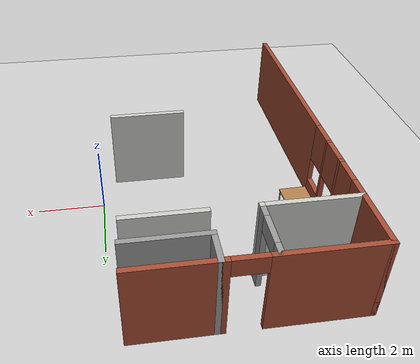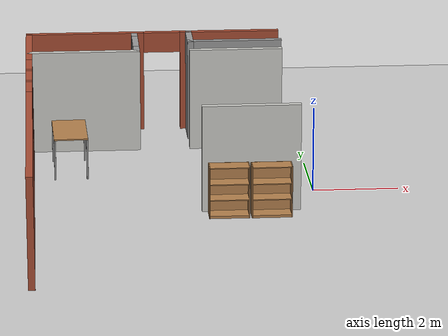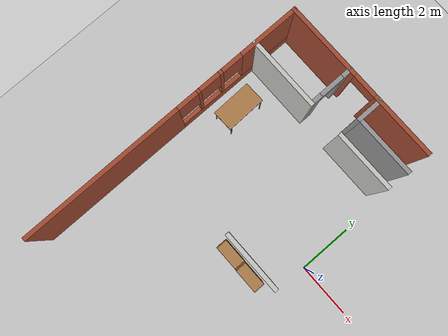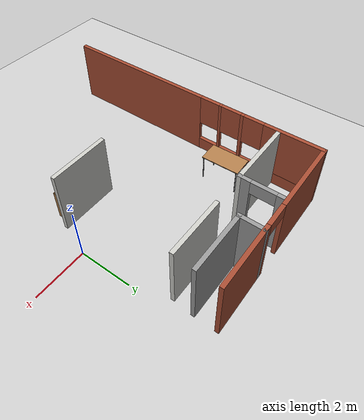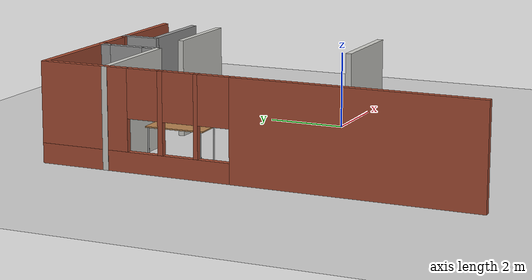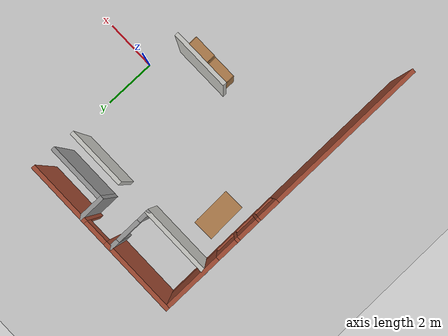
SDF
<sdf version="1.6">
 <world name="default">
  <model name="ground_plane">
   <static>1</static>
   <link name="link">
    <collision name="collision">
     <geometry><plane><normal>0 0 1</normal><size>100 100</size></plane></geometry>
     <surface><friction><ode><mu>100</mu><mu2>50</mu2></ode></friction></surface>
    </collision>
    <visual name="visual">
     <cast_shadows>0</cast_shadows>
     <geometry><plane><normal>0 0 1</normal><size>100 100</size></plane></geometry>
     <material>
      <script><uri>file://media/materials/scripts/gazebo.material</uri><name>Gazebo/Grey</name></script>
     </material>
    </visual>
   </link>
  </model>
  <model name="bookshelf">
   <static>1</static>
   <link name="link">
    <inertial><mass>1</mass></inertial>
    <collision name="back">
     <pose>0 0.005 0.6 0 -0 0</pose>
     <geometry><box><size>0.9 0.01 1.2</size></box></geometry>
    </collision>
    <visual name="visual1">
     <pose>0 0.005 0.6 0 -0 0</pose>
     <geometry><box><size>0.9 0.01 1.2</size></box></geometry>
     <material>
      <script><uri>file://media/materials/scripts/gazebo.material</uri><name>Gazebo/Wood</name></script>
     </material>
    </visual>
    <collision name="left_side">
     <pose>0.45 -0.195 0.6 0 -0 0</pose>
     <geometry><box><size>0.02 0.4 1.2</size></box></geometry>
    </collision>
    <visual name="visual2">
     <pose>0.45 -0.195 0.6 0 -0 0</pose>
     <geometry><box><size>0.02 0.4 1.2</size></box></geometry>
     <material>
      <script><uri>file://media/materials/scripts/gazebo.material</uri><name>Gazebo/Wood</name></script>
     </material>
    </visual>
    <collision name="right_side">
     <pose>-0.45 -0.195 0.6 0 -0 0</pose>
     <geometry><box><size>0.02 0.4 1.2</size></box></geometry>
    </collision>
    <visual name="visual3">
     <pose>-0.45 -0.195 0.6 0 -0 0</pose>
     <geometry><box><size>0.02 0.4 1.2</size></box></geometry>
     <material>
      <script><uri>file://media/materials/scripts/gazebo.material</uri><name>Gazebo/Wood</name></script>
     </material>
    </visual>
    <collision name="bottom">
     <pose>0 -0.195 0.03 0 -0 0</pose>
     <geometry><box><size>0.88 0.4 0.06</size></box></geometry>
    </collision>
    <visual name="visual4">
     <pose>0 -0.195 0.03 0 -0 0</pose>
     <geometry><box><size>0.88 0.4 0.06</size></box></geometry>
     <material>
      <script><uri>file://media/materials/scripts/gazebo.material</uri><name>Gazebo/Wood</name></script>
     </material>
    </visual>
    <collision name="top">
     <pose>0 -0.195 1.19 0 -0 0</pose>
     <geometry><box><size>0.88 0.4 0.02</size></box></geometry>
    </collision>
    <visual name="visual5">
     <pose>0 -0.195 1.19 0 -0 0</pose>
     <geometry><box><size>0.88 0.4 0.02</size></box></geometry>
     <material>
      <script><uri>file://media/materials/scripts/gazebo.material</uri><name>Gazebo/Wood</name></script>
     </material>
    </visual>
    <collision name="low_shelf">
     <pose>0 -0.195 0.43 0 -0 0</pose>
     <geometry><box><size>0.88 0.4 0.02</size></box></geometry>
    </collision>
    <visual name="visual6">
     <pose>0 -0.195 0.43 0 -0 0</pose>
     <geometry><box><size>0.88 0.4 0.02</size></box></geometry>
     <material>
      <script><uri>file://media/materials/scripts/gazebo.material</uri><name>Gazebo/Wood</name></script>
     </material>
    </visual>
    <collision name="high_shelf">
     <pose>0 -0.195 0.8 0 -0 0</pose>
     <geometry><box><size>0.88 0.4 0.02</size></box></geometry>
    </collision>
    <visual name="visual7">
     <pose>0 -0.195 0.8 0 -0 0</pose>
     <geometry><box><size>0.88 0.4 0.02</size></box></geometry>
     <material>
      <script><uri>file://media/materials/scripts/gazebo.material</uri><name>Gazebo/Wood</name></script>
     </material>
    </visual>
   </link>
   <pose>-2.07117 -1.36987 0 0 -0 0</pose>
  </model>
  <model name="bookshelf_0">
   <static>1</static>
   <link name="link">
    <inertial><mass>1</mass></inertial>
    <collision name="back">
     <pose>0 0.005 0.6 0 -0 0</pose>
     <geometry><box><size>0.9 0.01 1.2</size></box></geometry>
    </collision>
    <visual name="visual1">
     <pose>0 0.005 0.6 0 -0 0</pose>
     <geometry><box><size>0.9 0.01 1.2</size></box></geometry>
     <material>
      <script><uri>file://media/materials/scripts/gazebo.material</uri><name>Gazebo/Wood</name></script>
     </material>
    </visual>
    <collision name="left_side">
     <pose>0.45 -0.195 0.6 0 -0 0</pose>
     <geometry><box><size>0.02 0.4 1.2</size></box></geometry>
    </collision>
    <visual name="visual2">
     <pose>0.45 -0.195 0.6 0 -0 0</pose>
     <geometry><box><size>0.02 0.4 1.2</size></box></geometry>
     <material>
      <script><uri>file://media/materials/scripts/gazebo.material</uri><name>Gazebo/Wood</name></script>
     </material>
    </visual>
    <collision name="right_side">
     <pose>-0.45 -0.195 0.6 0 -0 0</pose>
     <geometry><box><size>0.02 0.4 1.2</size></box></geometry>
    </collision>
    <visual name="visual3">
     <pose>-0.45 -0.195 0.6 0 -0 0</pose>
     <geometry><box><size>0.02 0.4 1.2</size></box></geometry>
     <material>
      <script><uri>file://media/materials/scripts/gazebo.material</uri><name>Gazebo/Wood</name></script>
     </material>
    </visual>
    <collision name="bottom">
     <pose>0 -0.195 0.03 0 -0 0</pose>
     <geometry><box><size>0.88 0.4 0.06</size></box></geometry>
    </collision>
    <visual name="visual4">
     <pose>0 -0.195 0.03 0 -0 0</pose>
     <geometry><box><size>0.88 0.4 0.06</size></box></geometry>
     <material>
      <script><uri>file://media/materials/scripts/gazebo.material</uri><name>Gazebo/Wood</name></script>
     </material>
    </visual>
    <collision name="top">
     <pose>0 -0.195 1.19 0 -0 0</pose>
     <geometry><box><size>0.88 0.4 0.02</size></box></geometry>
    </collision>
    <visual name="visual5">
     <pose>0 -0.195 1.19 0 -0 0</pose>
     <geometry><box><size>0.88 0.4 0.02</size></box></geometry>
     <material>
      <script><uri>file://media/materials/scripts/gazebo.material</uri><name>Gazebo/Wood</name></script>
     </material>
    </visual>
    <collision name="low_shelf">
     <pose>0 -0.195 0.43 0 -0 0</pose>
     <geometry><box><size>0.88 0.4 0.02</size></box></geometry>
    </collision>
    <visual name="visual6">
     <pose>0 -0.195 0.43 0 -0 0</pose>
     <geometry><box><size>0.88 0.4 0.02</size></box></geometry>
     <material>
      <script><uri>file://media/materials/scripts/gazebo.material</uri><name>Gazebo/Wood</name></script>
     </material>
    </visual>
    <collision name="high_shelf">
     <pose>0 -0.195 0.8 0 -0 0</pose>
     <geometry><box><size>0.88 0.4 0.02</size></box></geometry>
    </collision>
    <visual name="visual7">
     <pose>0 -0.195 0.8 0 -0 0</pose>
     <geometry><box><size>0.88 0.4 0.02</size></box></geometry>
     <material>
      <script><uri>file://media/materials/scripts/gazebo.material</uri><name>Gazebo/Wood</name></script>
     </material>
    </visual>
   </link>
   <pose>-1.10888 -1.38227 0 0 -0 0</pose>
  </model>
  <model name="table">
   <static>1</static>
   <link name="link">
    <collision name="surface">
     <pose>0 0 1 0 -0 0</pose>
     <geometry><box><size>1.5 0.8 0.03</size></box></geometry>
     <surface><friction><ode><mu>0.6</mu><mu2>0.6</mu2></ode></friction></surface>
    </collision>
    <visual name="visual1">
     <pose>0 0 1 0 -0 0</pose>
     <geometry><box><size>1.5 0.8 0.03</size></box></geometry>
     <material>
      <script><uri>file://media/materials/scripts/gazebo.material</uri><name>Gazebo/Wood</name></script>
     </material>
    </visual>
    <collision name="front_left_leg">
     <pose>0.68 0.38 0.5 0 -0 0</pose>
     <geometry><cylinder><radius>0.02</radius><length>1</length></cylinder></geometry>
    </collision>
    <visual name="front_left_leg">
     <pose>0.68 0.38 0.5 0 -0 0</pose>
     <geometry><cylinder><radius>0.02</radius><length>1</length></cylinder></geometry>
     <material>
      <script><uri>file://media/materials/scripts/gazebo.material</uri><name>Gazebo/Grey</name></script>
     </material>
    </visual>
    <collision name="front_right_leg">
     <pose>0.68 -0.38 0.5 0 -0 0</pose>
     <geometry><cylinder><radius>0.02</radius><length>1</length></cylinder></geometry>
    </collision>
    <visual name="front_right_leg">
     <pose>0.68 -0.38 0.5 0 -0 0</pose>
     <geometry><cylinder><radius>0.02</radius><length>1</length></cylinder></geometry>
     <material>
      <script><uri>file://media/materials/scripts/gazebo.material</uri><name>Gazebo/Grey</name></script>
     </material>
    </visual>
    <collision name="back_right_leg">
     <pose>-0.68 -0.38 0.5 0 -0 0</pose>
     <geometry><cylinder><radius>0.02</radius><length>1</length></cylinder></geometry>
    </collision>
    <visual name="back_right_leg">
     <pose>-0.68 -0.38 0.5 0 -0 0</pose>
     <geometry><cylinder><radius>0.02</radius><length>1</length></cylinder></geometry>
     <material>
      <script><uri>file://media/materials/scripts/gazebo.material</uri><name>Gazebo/Grey</name></script>
     </material>
    </visual>
    <collision name="back_left_leg">
     <pose>-0.68 0.38 0.5 0 -0 0</pose>
     <geometry><cylinder><radius>0.02</radius><length>1</length></cylinder></geometry>
    </collision>
    <visual name="back_left_leg">
     <pose>-0.68 0.38 0.5 0 -0 0</pose>
     <geometry><cylinder><radius>0.02</radius><length>1</length></cylinder></geometry>
     <material>
      <script><uri>file://media/materials/scripts/gazebo.material</uri><name>Gazebo/Grey</name></script>
     </material>
    </visual>
   </link>
   <pose>-5.60379 1.89349 0 0 0 -1.54503</pose>
  </model>
  <model name="project1_building">
   <link name="Wall_0">
    <pose>-5.67233 0 0 0 -0 1.5708</pose>
    <visual name="Wall_0_Visual_0">
     <pose>-2.47085 0 1.25 0 -0 0</pose>
     <geometry><box><size>6.0583 0.15 2.5</size></box></geometry>
     <material>
      <script><uri>file://media/materials/scripts/gazebo.material</uri><name>Gazebo/Bricks</name></script>
      <ambient>1 1 1 1</ambient>
      <shader type="pixel"/>
      <diffuse>1 1 1 1</diffuse>
      <specular>0.2 0.2 0.2 1</specular>
      <emissive>0 0 0 1</emissive>
     </material>
     <meta><layer>0</layer></meta>
    </visual>
    <visual name="Wall_0_Visual_1">
     <pose>3.02915 0 0.25 0 -0 0</pose>
     <geometry><box><size>4.9417 0.15 0.5</size></box></geometry>
     <material>
      <script><uri>file://media/materials/scripts/gazebo.material</uri><name>Gazebo/Bricks</name></script>
      <ambient>1 1 1 1</ambient>
      <shader type="pixel"/>
      <diffuse>1 1 1 1</diffuse>
      <specular>0.2 0.2 0.2 1</specular>
      <emissive>0 0 0 1</emissive>
     </material>
     <meta><layer>0</layer></meta>
    </visual>
    <visual name="Wall_0_Visual_2">
     <pose>1.41086 0 1.5 0 -0 0</pose>
     <geometry><box><size>0.105111 0.15 2</size></box></geometry>
     <material>
      <script><uri>file://media/materials/scripts/gazebo.material</uri><name>Gazebo/Bricks</name></script>
      <ambient>1 1 1 1</ambient>
      <shader type="pixel"/>
      <diffuse>1 1 1 1</diffuse>
      <specular>0.2 0.2 0.2 1</specular>
      <emissive>0 0 0 1</emissive>
     </material>
     <meta><layer>0</layer></meta>
    </visual>
    <visual name="Wall_0_Visual_3">
     <pose>2.32602 0 1.5 0 -0 0</pose>
     <geometry><box><size>0.125224 0.15 2</size></box></geometry>
     <material>
      <script><uri>file://media/materials/scripts/gazebo.material</uri><name>Gazebo/Bricks</name></script>
      <ambient>1 1 1 1</ambient>
      <shader type="pixel"/>
      <diffuse>1 1 1 1</diffuse>
      <specular>0.2 0.2 0.2 1</specular>
      <emissive>0 0 0 1</emissive>
     </material>
     <meta><layer>0</layer></meta>
    </visual>
    <visual name="Wall_0_Visual_4">
     <pose>4.34432 0 1.5 0 -0 0</pose>
     <geometry><box><size>2.31136 0.15 2</size></box></geometry>
     <material>
      <script><uri>file://media/materials/scripts/gazebo.material</uri><name>Gazebo/Bricks</name></script>
      <ambient>1 1 1 1</ambient>
      <shader type="pixel"/>
      <diffuse>1 1 1 1</diffuse>
      <specular>0.2 0.2 0.2 1</specular>
      <emissive>0 0 0 1</emissive>
     </material>
     <meta><layer>0</layer></meta>
    </visual>
    <visual name="Wall_0_Visual_5">
     <pose>0.9583 0 1.9 0 -0 0</pose>
     <geometry><box><size>0.8 0.15 1.2</size></box></geometry>
     <material>
      <script><uri>file://media/materials/scripts/gazebo.material</uri><name>Gazebo/Bricks</name></script>
      <ambient>1 1 1 1</ambient>
      <shader type="pixel"/>
      <diffuse>1 1 1 1</diffuse>
      <specular>0.2 0.2 0.2 1</specular>
      <emissive>0 0 0 1</emissive>
     </material>
     <meta><layer>0</layer></meta>
    </visual>
    <visual name="Wall_0_Visual_6">
     <pose>1.86341 0 1.9 0 -0 0</pose>
     <geometry><box><size>0.8 0.15 1.2</size></box></geometry>
     <material>
      <script><uri>file://media/materials/scripts/gazebo.material</uri><name>Gazebo/Bricks</name></script>
      <ambient>1 1 1 1</ambient>
      <shader type="pixel"/>
      <diffuse>1 1 1 1</diffuse>
      <specular>0.2 0.2 0.2 1</specular>
      <emissive>0 0 0 1</emissive>
     </material>
     <meta><layer>0</layer></meta>
    </visual>
    <visual name="Wall_0_Visual_7">
     <pose>2.78864 0 1.9 0 -0 0</pose>
     <geometry><box><size>0.8 0.15 1.2</size></box></geometry>
     <material>
      <script><uri>file://media/materials/scripts/gazebo.material</uri><name>Gazebo/Bricks</name></script>
      <ambient>1 1 1 1</ambient>
      <shader type="pixel"/>
      <diffuse>1 1 1 1</diffuse>
      <specular>0.2 0.2 0.2 1</specular>
      <emissive>0 0 0 1</emissive>
     </material>
     <meta><layer>0</layer></meta>
    </visual>
    <collision name="Wall_0_Collision_1">
     <pose>3.02915 0 0.25 0 -0 0</pose>
     <geometry><box><size>4.9417 0.15 0.5</size></box></geometry>
     <surface>
      <friction>
       <ode><mu>1</mu><mu2>1</mu2><fdir1>0 0 0</fdir1><slip1>0</slip1><slip2>0</slip2></ode>
       <torsional>
        <coefficient>1</coefficient>
        <patch_radius>0</patch_radius>
        <surface_radius>0</surface_radius>
        <use_patch_radius>1</use_patch_radius>
        <ode><slip>0</slip></ode>
       </torsional>
      </friction>
      <bounce><restitution_coefficient>0</restitution_coefficient><threshold>1e+06</threshold></bounce>
      <contact>
       <collide_without_contact>0</collide_without_contact>
       <collide_without_contact_bitmask>1</collide_without_contact_bitmask>
       <collide_bitmask>1</collide_bitmask>
       <ode>
        <soft_cfm>0</soft_cfm>
        <soft_erp>0.2</soft_erp>
        <kp>1e+13</kp>
        <kd>1</kd>
        <max_vel>0.01</max_vel>
        <min_depth>0</min_depth>
       </ode>
       <bullet>
        <split_impulse>1</split_impulse>
        <split_impulse_penetration_threshold>-0.01</split_impulse_penetration_threshold>
        <soft_cfm>0</soft_cfm>
        <soft_erp>0.2</soft_erp>
        <kp>1e+13</kp>
        <kd>1</kd>
       </bullet>
      </contact>
     </surface>
    </collision>
    <collision name="Wall_0_Collision_0">
     <pose>-2.47085 0 1.25 0 -0 0</pose>
     <geometry><box><size>6.0583 0.15 2.5</size></box></geometry>
     <surface>
      <friction>
       <ode><mu>1</mu><mu2>1</mu2><fdir1>0 0 0</fdir1><slip1>0</slip1><slip2>0</slip2></ode>
       <torsional>
        <coefficient>1</coefficient>
        <patch_radius>0</patch_radius>
        <surface_radius>0</surface_radius>
        <use_patch_radius>1</use_patch_radius>
        <ode><slip>0</slip></ode>
       </torsional>
      </friction>
      <bounce><restitution_coefficient>0</restitution_coefficient><threshold>1e+06</threshold></bounce>
      <contact>
       <collide_without_contact>0</collide_without_contact>
       <collide_without_contact_bitmask>1</collide_without_contact_bitmask>
       <collide_bitmask>1</collide_bitmask>
       <ode>
        <soft_cfm>0</soft_cfm>
        <soft_erp>0.2</soft_erp>
        <kp>1e+13</kp>
        <kd>1</kd>
        <max_vel>0.01</max_vel>
        <min_depth>0</min_depth>
       </ode>
       <bullet>
        <split_impulse>1</split_impulse>
        <split_impulse_penetration_threshold>-0.01</split_impulse_penetration_threshold>
        <soft_cfm>0</soft_cfm>
        <soft_erp>0.2</soft_erp>
        <kp>1e+13</kp>
        <kd>1</kd>
       </bullet>
      </contact>
     </surface>
    </collision>
    <collision name="Wall_0_Collision_2">
     <pose>1.41086 0 1.5 0 -0 0</pose>
     <geometry><box><size>0.105111 0.15 2</size></box></geometry>
     <surface>
      <friction>
       <ode><mu>1</mu><mu2>1</mu2><fdir1>0 0 0</fdir1><slip1>0</slip1><slip2>0</slip2></ode>
       <torsional>
        <coefficient>1</coefficient>
        <patch_radius>0</patch_radius>
        <surface_radius>0</surface_radius>
        <use_patch_radius>1</use_patch_radius>
        <ode><slip>0</slip></ode>
       </torsional>
      </friction>
      <bounce><restitution_coefficient>0</restitution_coefficient><threshold>1e+06</threshold></bounce>
      <contact>
       <collide_without_contact>0</collide_without_contact>
       <collide_without_contact_bitmask>1</collide_without_contact_bitmask>
       <collide_bitmask>1</collide_bitmask>
       <ode>
        <soft_cfm>0</soft_cfm>
        <soft_erp>0.2</soft_erp>
        <kp>1e+13</kp>
        <kd>1</kd>
        <max_vel>0.01</max_vel>
        <min_depth>0</min_depth>
       </ode>
       <bullet>
        <split_impulse>1</split_impulse>
        <split_impulse_penetration_threshold>-0.01</split_impulse_penetration_threshold>
        <soft_cfm>0</soft_cfm>
        <soft_erp>0.2</soft_erp>
        <kp>1e+13</kp>
        <kd>1</kd>
       </bullet>
      </contact>
     </surface>
    </collision>
    <collision name="Wall_0_Collision_5">
     <pose>0.9583 0 1.9 0 -0 0</pose>
     <geometry><box><size>0.8 0.15 1.2</size></box></geometry>
     <surface>
      <friction>
       <ode><mu>1</mu><mu2>1</mu2><fdir1>0 0 0</fdir1><slip1>0</slip1><slip2>0</slip2></ode>
       <torsional>
        <coefficient>1</coefficient>
        <patch_radius>0</patch_radius>
        <surface_radius>0</surface_radius>
        <use_patch_radius>1</use_patch_radius>
        <ode><slip>0</slip></ode>
       </torsional>
      </friction>
      <bounce><restitution_coefficient>0</restitution_coefficient><threshold>1e+06</threshold></bounce>
      <contact>
       <collide_without_contact>0</collide_without_contact>
       <collide_without_contact_bitmask>1</collide_without_contact_bitmask>
       <collide_bitmask>1</collide_bitmask>
       <ode>
        <soft_cfm>0</soft_cfm>
        <soft_erp>0.2</soft_erp>
        <kp>1e+13</kp>
        <kd>1</kd>
        <max_vel>0.01</max_vel>
        <min_depth>0</min_depth>
       </ode>
       <bullet>
        <split_impulse>1</split_impulse>
        <split_impulse_penetration_threshold>-0.01</split_impulse_penetration_threshold>
        <soft_cfm>0</soft_cfm>
        <soft_erp>0.2</soft_erp>
        <kp>1e+13</kp>
        <kd>1</kd>
       </bullet>
      </contact>
     </surface>
    </collision>
    <collision name="Wall_0_Collision_3">
     <pose>2.32602 0 1.5 0 -0 0</pose>
     <geometry><box><size>0.125224 0.15 2</size></box></geometry>
     <surface>
      <friction>
       <ode><mu>1</mu><mu2>1</mu2><fdir1>0 0 0</fdir1><slip1>0</slip1><slip2>0</slip2></ode>
       <torsional>
        <coefficient>1</coefficient>
        <patch_radius>0</patch_radius>
        <surface_radius>0</surface_radius>
        <use_patch_radius>1</use_patch_radius>
        <ode><slip>0</slip></ode>
       </torsional>
      </friction>
      <bounce><restitution_coefficient>0</restitution_coefficient><threshold>1e+06</threshold></bounce>
      <contact>
       <collide_without_contact>0</collide_without_contact>
       <collide_without_contact_bitmask>1</collide_without_contact_bitmask>
       <collide_bitmask>1</collide_bitmask>
       <ode>
        <soft_cfm>0</soft_cfm>
        <soft_erp>0.2</soft_erp>
        <kp>1e+13</kp>
        <kd>1</kd>
        <max_vel>0.01</max_vel>
        <min_depth>0</min_depth>
       </ode>
       <bullet>
        <split_impulse>1</split_impulse>
        <split_impulse_penetration_threshold>-0.01</split_impulse_penetration_threshold>
        <soft_cfm>0</soft_cfm>
        <soft_erp>0.2</soft_erp>
        <kp>1e+13</kp>
        <kd>1</kd>
       </bullet>
      </contact>
     </surface>
    </collision>
    <collision name="Wall_0_Collision_4">
     <pose>4.34432 0 1.5 0 -0 0</pose>
     <geometry><box><size>2.31136 0.15 2</size></box></geometry>
     <surface>
      <friction>
       <ode><mu>1</mu><mu2>1</mu2><fdir1>0 0 0</fdir1><slip1>0</slip1><slip2>0</slip2></ode>
       <torsional>
        <coefficient>1</coefficient>
        <patch_radius>0</patch_radius>
        <surface_radius>0</surface_radius>
        <use_patch_radius>1</use_patch_radius>
        <ode><slip>0</slip></ode>
       </torsional>
      </friction>
      <bounce><restitution_coefficient>0</restitution_coefficient><threshold>1e+06</threshold></bounce>
      <contact>
       <collide_without_contact>0</collide_without_contact>
       <collide_without_contact_bitmask>1</collide_without_contact_bitmask>
       <collide_bitmask>1</collide_bitmask>
       <ode>
        <soft_cfm>0</soft_cfm>
        <soft_erp>0.2</soft_erp>
        <kp>1e+13</kp>
        <kd>1</kd>
        <max_vel>0.01</max_vel>
        <min_depth>0</min_depth>
       </ode>
       <bullet>
        <split_impulse>1</split_impulse>
        <split_impulse_penetration_threshold>-0.01</split_impulse_penetration_threshold>
        <soft_cfm>0</soft_cfm>
        <soft_erp>0.2</soft_erp>
        <kp>1e+13</kp>
        <kd>1</kd>
       </bullet>
      </contact>
     </surface>
    </collision>
    <collision name="Wall_0_Collision_6">
     <pose>1.86341 0 1.9 0 -0 0</pose>
     <geometry><box><size>0.8 0.15 1.2</size></box></geometry>
     <surface>
      <friction>
       <ode><mu>1</mu><mu2>1</mu2><fdir1>0 0 0</fdir1><slip1>0</slip1><slip2>0</slip2></ode>
       <torsional>
        <coefficient>1</coefficient>
        <patch_radius>0</patch_radius>
        <surface_radius>0</surface_radius>
        <use_patch_radius>1</use_patch_radius>
        <ode><slip>0</slip></ode>
       </torsional>
      </friction>
      <bounce><restitution_coefficient>0</restitution_coefficient><threshold>1e+06</threshold></bounce>
      <contact>
       <collide_without_contact>0</collide_without_contact>
       <collide_without_contact_bitmask>1</collide_without_contact_bitmask>
       <collide_bitmask>1</collide_bitmask>
       <ode>
        <soft_cfm>0</soft_cfm>
        <soft_erp>0.2</soft_erp>
        <kp>1e+13</kp>
        <kd>1</kd>
        <max_vel>0.01</max_vel>
        <min_depth>0</min_depth>
       </ode>
       <bullet>
        <split_impulse>1</split_impulse>
        <split_impulse_penetration_threshold>-0.01</split_impulse_penetration_threshold>
        <soft_cfm>0</soft_cfm>
        <soft_erp>0.2</soft_erp>
        <kp>1e+13</kp>
        <kd>1</kd>
       </bullet>
      </contact>
     </surface>
    </collision>
    <collision name="Wall_0_Collision_7">
     <pose>2.78864 0 1.9 0 -0 0</pose>
     <geometry><box><size>0.8 0.15 1.2</size></box></geometry>
     <surface>
      <friction>
       <ode><mu>1</mu><mu2>1</mu2><fdir1>0 0 0</fdir1><slip1>0</slip1><slip2>0</slip2></ode>
       <torsional>
        <coefficient>1</coefficient>
        <patch_radius>0</patch_radius>
        <surface_radius>0</surface_radius>
        <use_patch_radius>1</use_patch_radius>
        <ode><slip>0</slip></ode>
       </torsional>
      </friction>
      <bounce><restitution_coefficient>0</restitution_coefficient><threshold>1e+06</threshold></bounce>
      <contact>
       <collide_without_contact>0</collide_without_contact>
       <collide_without_contact_bitmask>1</collide_without_contact_bitmask>
       <collide_bitmask>1</collide_bitmask>
       <ode>
        <soft_cfm>0</soft_cfm>
        <soft_erp>0.2</soft_erp>
        <kp>1e+13</kp>
        <kd>1</kd>
        <max_vel>0.01</max_vel>
        <min_depth>0</min_depth>
       </ode>
       <bullet>
        <split_impulse>1</split_impulse>
        <split_impulse_penetration_threshold>-0.01</split_impulse_penetration_threshold>
        <soft_cfm>0</soft_cfm>
        <soft_erp>0.2</soft_erp>
        <kp>1e+13</kp>
        <kd>1</kd>
       </bullet>
      </contact>
     </surface>
    </collision>
   </link>
   <link name="Wall_1">
    <pose>-2.62233 5.425 0 0 -0 0</pose>
    <visual name="Wall_1_Visual_0">
     <pose>-1.67324 0 1.25 0 -0 0</pose>
     <geometry><box><size>2.90351 0.15 2.5</size></box></geometry>
     <material>
      <script><uri>file://media/materials/scripts/gazebo.material</uri><name>Gazebo/Bricks</name></script>
      <ambient>1 1 1 1</ambient>
      <shader type="pixel"/>
      <diffuse>1 1 1 1</diffuse>
      <specular>0.2 0.2 0.2 1</specular>
      <emissive>0 0 0 1</emissive>
     </material>
     <meta><layer>0</layer></meta>
    </visual>
    <visual name="Wall_1_Visual_1">
     <pose>1.90176 0 1.25 0 -0 0</pose>
     <geometry><box><size>2.44649 0.15 2.5</size></box></geometry>
     <material>
      <script><uri>file://media/materials/scripts/gazebo.material</uri><name>Gazebo/Bricks</name></script>
      <ambient>1 1 1 1</ambient>
      <shader type="pixel"/>
      <diffuse>1 1 1 1</diffuse>
      <specular>0.2 0.2 0.2 1</specular>
      <emissive>0 0 0 1</emissive>
     </material>
     <meta><layer>0</layer></meta>
    </visual>
    <visual name="Wall_1_Visual_2">
     <pose>0.228513 0 2.25 0 -0 0</pose>
     <geometry><box><size>0.9 0.15 0.5</size></box></geometry>
     <material>
      <script><uri>file://media/materials/scripts/gazebo.material</uri><name>Gazebo/Bricks</name></script>
      <ambient>1 1 1 1</ambient>
      <shader type="pixel"/>
      <diffuse>1 1 1 1</diffuse>
      <specular>0.2 0.2 0.2 1</specular>
      <emissive>0 0 0 1</emissive>
     </material>
     <meta><layer>0</layer></meta>
    </visual>
    <collision name="Wall_1_Collision_0">
     <pose>-1.67324 0 1.25 0 -0 0</pose>
     <geometry><box><size>2.90351 0.15 2.5</size></box></geometry>
     <surface>
      <friction>
       <ode><mu>1</mu><mu2>1</mu2><fdir1>0 0 0</fdir1><slip1>0</slip1><slip2>0</slip2></ode>
       <torsional>
        <coefficient>1</coefficient>
        <patch_radius>0</patch_radius>
        <surface_radius>0</surface_radius>
        <use_patch_radius>1</use_patch_radius>
        <ode><slip>0</slip></ode>
       </torsional>
      </friction>
      <bounce><restitution_coefficient>0</restitution_coefficient><threshold>1e+06</threshold></bounce>
      <contact>
       <collide_without_contact>0</collide_without_contact>
       <collide_without_contact_bitmask>1</collide_without_contact_bitmask>
       <collide_bitmask>1</collide_bitmask>
       <ode>
        <soft_cfm>0</soft_cfm>
        <soft_erp>0.2</soft_erp>
        <kp>1e+13</kp>
        <kd>1</kd>
        <max_vel>0.01</max_vel>
        <min_depth>0</min_depth>
       </ode>
       <bullet>
        <split_impulse>1</split_impulse>
        <split_impulse_penetration_threshold>-0.01</split_impulse_penetration_threshold>
        <soft_cfm>0</soft_cfm>
        <soft_erp>0.2</soft_erp>
        <kp>1e+13</kp>
        <kd>1</kd>
       </bullet>
      </contact>
     </surface>
    </collision>
    <collision name="Wall_1_Collision_2">
     <pose>0.228513 0 2.25 0 -0 0</pose>
     <geometry><box><size>0.9 0.15 0.5</size></box></geometry>
     <surface>
      <friction>
       <ode><mu>1</mu><mu2>1</mu2><fdir1>0 0 0</fdir1><slip1>0</slip1><slip2>0</slip2></ode>
       <torsional>
        <coefficient>1</coefficient>
        <patch_radius>0</patch_radius>
        <surface_radius>0</surface_radius>
        <use_patch_radius>1</use_patch_radius>
        <ode><slip>0</slip></ode>
       </torsional>
      </friction>
      <bounce><restitution_coefficient>0</restitution_coefficient><threshold>1e+06</threshold></bounce>
      <contact>
       <collide_without_contact>0</collide_without_contact>
       <collide_without_contact_bitmask>1</collide_without_contact_bitmask>
       <collide_bitmask>1</collide_bitmask>
       <ode>
        <soft_cfm>0</soft_cfm>
        <soft_erp>0.2</soft_erp>
        <kp>1e+13</kp>
        <kd>1</kd>
        <max_vel>0.01</max_vel>
        <min_depth>0</min_depth>
       </ode>
       <bullet>
        <split_impulse>1</split_impulse>
        <split_impulse_penetration_threshold>-0.01</split_impulse_penetration_threshold>
        <soft_cfm>0</soft_cfm>
        <soft_erp>0.2</soft_erp>
        <kp>1e+13</kp>
        <kd>1</kd>
       </bullet>
      </contact>
     </surface>
    </collision>
    <collision name="Wall_1_Collision_1">
     <pose>1.90176 0 1.25 0 -0 0</pose>
     <geometry><box><size>2.44649 0.15 2.5</size></box></geometry>
     <surface>
      <friction>
       <ode><mu>1</mu><mu2>1</mu2><fdir1>0 0 0</fdir1><slip1>0</slip1><slip2>0</slip2></ode>
       <torsional>
        <coefficient>1</coefficient>
        <patch_radius>0</patch_radius>
        <surface_radius>0</surface_radius>
        <use_patch_radius>1</use_patch_radius>
        <ode><slip>0</slip></ode>
       </torsional>
      </friction>
      <bounce><restitution_coefficient>0</restitution_coefficient><threshold>1e+06</threshold></bounce>
      <contact>
       <collide_without_contact>0</collide_without_contact>
       <collide_without_contact_bitmask>1</collide_without_contact_bitmask>
       <collide_bitmask>1</collide_bitmask>
       <ode>
        <soft_cfm>0</soft_cfm>
        <soft_erp>0.2</soft_erp>
        <kp>1e+13</kp>
        <kd>1</kd>
        <max_vel>0.01</max_vel>
        <min_depth>0</min_depth>
       </ode>
       <bullet>
        <split_impulse>1</split_impulse>
        <split_impulse_penetration_threshold>-0.01</split_impulse_penetration_threshold>
        <soft_cfm>0</soft_cfm>
        <soft_erp>0.2</soft_erp>
        <kp>1e+13</kp>
        <kd>1</kd>
       </bullet>
      </contact>
     </surface>
    </collision>
   </link>
   <link name="Wall_16">
    <pose>-0.652617 4.575 0 0 -0 3.14159</pose>
    <visual name="Wall_16_Visual">
     <pose>0 0 1.25 0 -0 0</pose>
     <geometry><box><size>2.31058 0.15 2.5</size></box></geometry>
     <material>
      <script><uri>file://media/materials/scripts/gazebo.material</uri><name>Gazebo/Grey</name></script>
      <ambient>1 1 1 1</ambient>
      <shader type="pixel"/>
      <diffuse>0.7 0.7 0.7 1</diffuse>
      <specular>0.01 0.01 0.01 1</specular>
      <emissive>0 0 0 1</emissive>
     </material>
     <meta><layer>0</layer></meta>
    </visual>
    <collision name="Wall_16_Collision">
     <pose>0 0 1.25 0 -0 0</pose>
     <geometry><box><size>2.31058 0.15 2.5</size></box></geometry>
     <surface>
      <friction>
       <ode><mu>1</mu><mu2>1</mu2><fdir1>0 0 0</fdir1><slip1>0</slip1><slip2>0</slip2></ode>
       <torsional>
        <coefficient>1</coefficient>
        <patch_radius>0</patch_radius>
        <surface_radius>0</surface_radius>
        <use_patch_radius>1</use_patch_radius>
        <ode><slip>0</slip></ode>
       </torsional>
      </friction>
      <bounce><restitution_coefficient>0</restitution_coefficient><threshold>1e+06</threshold></bounce>
      <contact>
       <collide_without_contact>0</collide_without_contact>
       <collide_without_contact_bitmask>1</collide_without_contact_bitmask>
       <collide_bitmask>1</collide_bitmask>
       <ode>
        <soft_cfm>0</soft_cfm>
        <soft_erp>0.2</soft_erp>
        <kp>1e+13</kp>
        <kd>1</kd>
        <max_vel>0.01</max_vel>
        <min_depth>0</min_depth>
       </ode>
       <bullet>
        <split_impulse>1</split_impulse>
        <split_impulse_penetration_threshold>-0.01</split_impulse_penetration_threshold>
        <soft_cfm>0</soft_cfm>
        <soft_erp>0.2</soft_erp>
        <kp>1e+13</kp>
        <kd>1</kd>
       </bullet>
      </contact>
     </surface>
    </collision>
   </link>
   <link name="Wall_17">
    <pose>-1.73291 5 0 0 -0 1.5708</pose>
    <visual name="Wall_17_Visual">
     <pose>0 0 1.25 0 -0 0</pose>
     <geometry><box><size>1 0.15 2.5</size></box></geometry>
     <material>
      <script><uri>file://media/materials/scripts/gazebo.material</uri><name>Gazebo/Grey</name></script>
      <ambient>1 1 1 1</ambient>
      <shader type="pixel"/>
      <diffuse>0.7 0.7 0.7 1</diffuse>
      <specular>0.01 0.01 0.01 1</specular>
      <emissive>0 0 0 1</emissive>
     </material>
     <meta><layer>0</layer></meta>
    </visual>
    <collision name="Wall_17_Collision">
     <pose>0 0 1.25 0 -0 0</pose>
     <geometry><box><size>1 0.15 2.5</size></box></geometry>
     <surface>
      <friction>
       <ode><mu>1</mu><mu2>1</mu2><fdir1>0 0 0</fdir1><slip1>0</slip1><slip2>0</slip2></ode>
       <torsional>
        <coefficient>1</coefficient>
        <patch_radius>0</patch_radius>
        <surface_radius>0</surface_radius>
        <use_patch_radius>1</use_patch_radius>
        <ode><slip>0</slip></ode>
       </torsional>
      </friction>
      <bounce><restitution_coefficient>0</restitution_coefficient><threshold>1e+06</threshold></bounce>
      <contact>
       <collide_without_contact>0</collide_without_contact>
       <collide_without_contact_bitmask>1</collide_without_contact_bitmask>
       <collide_bitmask>1</collide_bitmask>
       <ode>
        <soft_cfm>0</soft_cfm>
        <soft_erp>0.2</soft_erp>
        <kp>1e+13</kp>
        <kd>1</kd>
        <max_vel>0.01</max_vel>
        <min_depth>0</min_depth>
       </ode>
       <bullet>
        <split_impulse>1</split_impulse>
        <split_impulse_penetration_threshold>-0.01</split_impulse_penetration_threshold>
        <soft_cfm>0</soft_cfm>
        <soft_erp>0.2</soft_erp>
        <kp>1e+13</kp>
        <kd>1</kd>
       </bullet>
      </contact>
     </surface>
    </collision>
   </link>
   <link name="Wall_19">
    <pose>-3.07768 4.58329 0 0 0 -1.5708</pose>
    <visual name="Wall_19_Visual_0">
     <pose>-0.690399 0 1.25 0 -0 0</pose>
     <geometry><box><size>0.369202 0.15 2.5</size></box></geometry>
     <material>
      <script><uri>file://media/materials/scripts/gazebo.material</uri><name>Gazebo/Grey</name></script>
      <ambient>1 1 1 1</ambient>
      <shader type="pixel"/>
      <diffuse>0.7 0.7 0.7 1</diffuse>
      <specular>0.01 0.01 0.01 1</specular>
      <emissive>0 0 0 1</emissive>
     </material>
     <meta><layer>0</layer></meta>
    </visual>
    <visual name="Wall_19_Visual_1">
     <pose>0.634601 0 1.25 0 -0 0</pose>
     <geometry><box><size>0.480798 0.15 2.5</size></box></geometry>
     <material>
      <script><uri>file://media/materials/scripts/gazebo.material</uri><name>Gazebo/Grey</name></script>
      <ambient>1 1 1 1</ambient>
      <shader type="pixel"/>
      <diffuse>0.7 0.7 0.7 1</diffuse>
      <specular>0.01 0.01 0.01 1</specular>
      <emissive>0 0 0 1</emissive>
     </material>
     <meta><layer>0</layer></meta>
    </visual>
    <visual name="Wall_19_Visual_2">
     <pose>-0.055798 0 2.25 0 -0 0</pose>
     <geometry><box><size>0.9 0.15 0.5</size></box></geometry>
     <material>
      <script><uri>file://media/materials/scripts/gazebo.material</uri><name>Gazebo/Grey</name></script>
      <ambient>1 1 1 1</ambient>
      <shader type="pixel"/>
      <diffuse>0.7 0.7 0.7 1</diffuse>
      <specular>0.01 0.01 0.01 1</specular>
      <emissive>0 0 0 1</emissive>
     </material>
     <meta><layer>0</layer></meta>
    </visual>
    <collision name="Wall_19_Collision_0">
     <pose>-0.690399 0 1.25 0 -0 0</pose>
     <geometry><box><size>0.369202 0.15 2.5</size></box></geometry>
     <surface>
      <friction>
       <ode><mu>1</mu><mu2>1</mu2><fdir1>0 0 0</fdir1><slip1>0</slip1><slip2>0</slip2></ode>
       <torsional>
        <coefficient>1</coefficient>
        <patch_radius>0</patch_radius>
        <surface_radius>0</surface_radius>
        <use_patch_radius>1</use_patch_radius>
        <ode><slip>0</slip></ode>
       </torsional>
      </friction>
      <bounce><restitution_coefficient>0</restitution_coefficient><threshold>1e+06</threshold></bounce>
      <contact>
       <collide_without_contact>0</collide_without_contact>
       <collide_without_contact_bitmask>1</collide_without_contact_bitmask>
       <collide_bitmask>1</collide_bitmask>
       <ode>
        <soft_cfm>0</soft_cfm>
        <soft_erp>0.2</soft_erp>
        <kp>1e+13</kp>
        <kd>1</kd>
        <max_vel>0.01</max_vel>
        <min_depth>0</min_depth>
       </ode>
       <bullet>
        <split_impulse>1</split_impulse>
        <split_impulse_penetration_threshold>-0.01</split_impulse_penetration_threshold>
        <soft_cfm>0</soft_cfm>
        <soft_erp>0.2</soft_erp>
        <kp>1e+13</kp>
        <kd>1</kd>
       </bullet>
      </contact>
     </surface>
    </collision>
    <collision name="Wall_19_Collision_1">
     <pose>0.634601 0 1.25 0 -0 0</pose>
     <geometry><box><size>0.480798 0.15 2.5</size></box></geometry>
     <surface>
      <friction>
       <ode><mu>1</mu><mu2>1</mu2><fdir1>0 0 0</fdir1><slip1>0</slip1><slip2>0</slip2></ode>
       <torsional>
        <coefficient>1</coefficient>
        <patch_radius>0</patch_radius>
        <surface_radius>0</surface_radius>
        <use_patch_radius>1</use_patch_radius>
        <ode><slip>0</slip></ode>
       </torsional>
      </friction>
      <bounce><restitution_coefficient>0</restitution_coefficient><threshold>1e+06</threshold></bounce>
      <contact>
       <collide_without_contact>0</collide_without_contact>
       <collide_without_contact_bitmask>1</collide_without_contact_bitmask>
       <collide_bitmask>1</collide_bitmask>
       <ode>
        <soft_cfm>0</soft_cfm>
        <soft_erp>0.2</soft_erp>
        <kp>1e+13</kp>
        <kd>1</kd>
        <max_vel>0.01</max_vel>
        <min_depth>0</min_depth>
       </ode>
       <bullet>
        <split_impulse>1</split_impulse>
        <split_impulse_penetration_threshold>-0.01</split_impulse_penetration_threshold>
        <soft_cfm>0</soft_cfm>
        <soft_erp>0.2</soft_erp>
        <kp>1e+13</kp>
        <kd>1</kd>
       </bullet>
      </contact>
     </surface>
    </collision>
    <collision name="Wall_19_Collision_2">
     <pose>-0.055798 0 2.25 0 -0 0</pose>
     <geometry><box><size>0.9 0.15 0.5</size></box></geometry>
     <surface>
      <friction>
       <ode><mu>1</mu><mu2>1</mu2><fdir1>0 0 0</fdir1><slip1>0</slip1><slip2>0</slip2></ode>
       <torsional>
        <coefficient>1</coefficient>
        <patch_radius>0</patch_radius>
        <surface_radius>0</surface_radius>
        <use_patch_radius>1</use_patch_radius>
        <ode><slip>0</slip></ode>
       </torsional>
      </friction>
      <bounce><restitution_coefficient>0</restitution_coefficient><threshold>1e+06</threshold></bounce>
      <contact>
       <collide_without_contact>0</collide_without_contact>
       <collide_without_contact_bitmask>1</collide_without_contact_bitmask>
       <collide_bitmask>1</collide_bitmask>
       <ode>
        <soft_cfm>0</soft_cfm>
        <soft_erp>0.2</soft_erp>
        <kp>1e+13</kp>
        <kd>1</kd>
        <max_vel>0.01</max_vel>
        <min_depth>0</min_depth>
       </ode>
       <bullet>
        <split_impulse>1</split_impulse>
        <split_impulse_penetration_threshold>-0.01</split_impulse_penetration_threshold>
        <soft_cfm>0</soft_cfm>
        <soft_erp>0.2</soft_erp>
        <kp>1e+13</kp>
        <kd>1</kd>
       </bullet>
      </contact>
     </surface>
    </collision>
   </link>
   <link name="Wall_20">
    <pose>-4.37767 3.78329 0 0 -0 3.14159</pose>
    <inertial>
     <mass>1</mass>
     <inertia><ixx>1</ixx><ixy>0</ixy><ixz>0</ixz><iyy>1</iyy><iyz>0</iyz><izz>1</izz></inertia>
    </inertial>
    <visual name="Wall_20_Visual">
     <pose>0 0 1.25 0 -0 0</pose>
     <geometry><box><size>2.75 0.15 2.5</size></box></geometry>
     <material>
      <script><uri>file://media/materials/scripts/gazebo.material</uri><name>Gazebo/CeilingTiled</name></script>
      <ambient>1 1 1 1</ambient>
      <shader type="pixel"><normal_map>__default__</normal_map></shader>
      <diffuse>1 1 1 1</diffuse>
      <specular>0 0 0 1</specular>
      <emissive>0 0 0 1</emissive>
     </material>
     <meta><layer>0</layer></meta>
    </visual>
    <collision name="Wall_20_Collision">
     <pose>0 0 1.25 0 -0 0</pose>
     <geometry><box><size>2.75 0.15 2.5</size></box></geometry>
     <surface>
      <friction>
       <ode><mu>1</mu><mu2>1</mu2><fdir1>0 0 0</fdir1><slip1>0</slip1><slip2>0</slip2></ode>
       <torsional>
        <coefficient>1</coefficient>
        <patch_radius>0</patch_radius>
        <surface_radius>0</surface_radius>
        <use_patch_radius>1</use_patch_radius>
        <ode><slip>0</slip></ode>
       </torsional>
      </friction>
      <bounce><restitution_coefficient>0</restitution_coefficient><threshold>1e+06</threshold></bounce>
      <contact>
       <collide_without_contact>0</collide_without_contact>
       <collide_without_contact_bitmask>1</collide_without_contact_bitmask>
       <collide_bitmask>1</collide_bitmask>
       <ode>
        <soft_cfm>0</soft_cfm>
        <soft_erp>0.2</soft_erp>
        <kp>1e+13</kp>
        <kd>1</kd>
        <max_vel>0.01</max_vel>
        <min_depth>0</min_depth>
       </ode>
       <bullet>
        <split_impulse>1</split_impulse>
        <split_impulse_penetration_threshold>-0.01</split_impulse_penetration_threshold>
        <soft_cfm>0</soft_cfm>
        <soft_erp>0.2</soft_erp>
        <kp>1e+13</kp>
        <kd>1</kd>
       </bullet>
      </contact>
     </surface>
    </collision>
   </link>
   <link name="Wall_22">
    <pose>-0.680066 3.79431 0 0 -0 0</pose>
    <visual name="Wall_22_Visual">
     <pose>0 0 1.25 0 -0 0</pose>
     <geometry><box><size>2.25 0.15 2.5</size></box></geometry>
     <material>
      <script><uri>file://media/materials/scripts/gazebo.material</uri><name>Gazebo/CeilingTiled</name></script>
      <ambient>1 1 1 1</ambient>
      <shader type="pixel"/>
      <diffuse>1 1 1 1</diffuse>
      <specular>0 0 0 1</specular>
      <emissive>0 0 0 1</emissive>
     </material>
     <meta><layer>0</layer></meta>
    </visual>
    <collision name="Wall_22_Collision">
     <pose>0 0 1.25 0 -0 0</pose>
     <geometry><box><size>2.25 0.15 2.5</size></box></geometry>
     <surface>
      <friction>
       <ode><mu>1</mu><mu2>1</mu2><fdir1>0 0 0</fdir1><slip1>0</slip1><slip2>0</slip2></ode>
       <torsional>
        <coefficient>1</coefficient>
        <patch_radius>0</patch_radius>
        <surface_radius>0</surface_radius>
        <use_patch_radius>1</use_patch_radius>
        <ode><slip>0</slip></ode>
       </torsional>
      </friction>
      <bounce><restitution_coefficient>0</restitution_coefficient><threshold>1e+06</threshold></bounce>
      <contact>
       <collide_without_contact>0</collide_without_contact>
       <collide_without_contact_bitmask>1</collide_without_contact_bitmask>
       <collide_bitmask>1</collide_bitmask>
       <ode>
        <soft_cfm>0</soft_cfm>
        <soft_erp>0.2</soft_erp>
        <kp>1e+13</kp>
        <kd>1</kd>
        <max_vel>0.01</max_vel>
        <min_depth>0</min_depth>
       </ode>
       <bullet>
        <split_impulse>1</split_impulse>
        <split_impulse_penetration_threshold>-0.01</split_impulse_penetration_threshold>
        <soft_cfm>0</soft_cfm>
        <soft_erp>0.2</soft_erp>
        <kp>1e+13</kp>
        <kd>1</kd>
       </bullet>
      </contact>
     </surface>
    </collision>
   </link>
   <link name="Wall_24">
    <pose>-0.680066 -0.805686 0 0 -0 3.14159</pose>
    <visual name="Wall_24_Visual">
     <pose>0 0 1.25 0 -0 0</pose>
     <geometry><box><size>2.25 0.15 2.5</size></box></geometry>
     <material>
      <script><uri>file://media/materials/scripts/gazebo.material</uri><name>Gazebo/CeilingTiled</name></script>
      <ambient>1 1 1 1</ambient>
      <shader type="pixel"/>
      <diffuse>1 1 1 1</diffuse>
      <specular>0 0 0 1</specular>
      <emissive>0 0 0 1</emissive>
     </material>
     <meta><layer>0</layer></meta>
    </visual>
    <collision name="Wall_24_Collision">
     <pose>0 0 1.25 0 -0 0</pose>
     <geometry><box><size>2.25 0.15 2.5</size></box></geometry>
     <surface>
      <friction>
       <ode><mu>1</mu><mu2>1</mu2><fdir1>0 0 0</fdir1><slip1>0</slip1><slip2>0</slip2></ode>
       <torsional>
        <coefficient>1</coefficient>
        <patch_radius>0</patch_radius>
        <surface_radius>0</surface_radius>
        <use_patch_radius>1</use_patch_radius>
        <ode><slip>0</slip></ode>
       </torsional>
      </friction>
      <bounce><restitution_coefficient>0</restitution_coefficient><threshold>1e+06</threshold></bounce>
      <contact>
       <collide_without_contact>0</collide_without_contact>
       <collide_without_contact_bitmask>1</collide_without_contact_bitmask>
       <collide_bitmask>1</collide_bitmask>
       <ode>
        <soft_cfm>0</soft_cfm>
        <soft_erp>0.2</soft_erp>
        <kp>1e+13</kp>
        <kd>1</kd>
        <max_vel>0.01</max_vel>
        <min_depth>0</min_depth>
       </ode>
       <bullet>
        <split_impulse>1</split_impulse>
        <split_impulse_penetration_threshold>-0.01</split_impulse_penetration_threshold>
        <soft_cfm>0</soft_cfm>
        <soft_erp>0.2</soft_erp>
        <kp>1e+13</kp>
        <kd>1</kd>
       </bullet>
      </contact>
     </surface>
    </collision>
   </link>
   <static>1</static>
   <pose>-0.860177 -0.394811 0 0 -0 0</pose>
  </model>
 </world>
</sdf>
